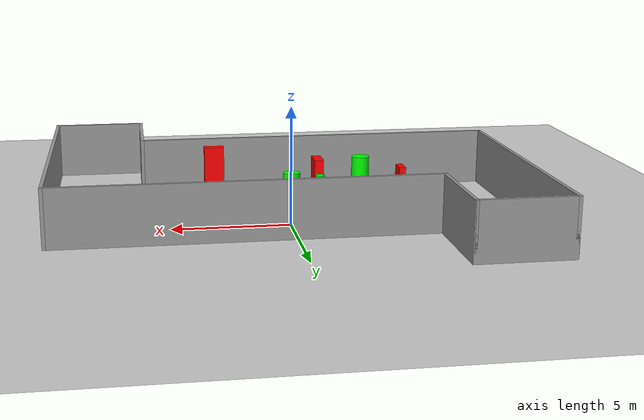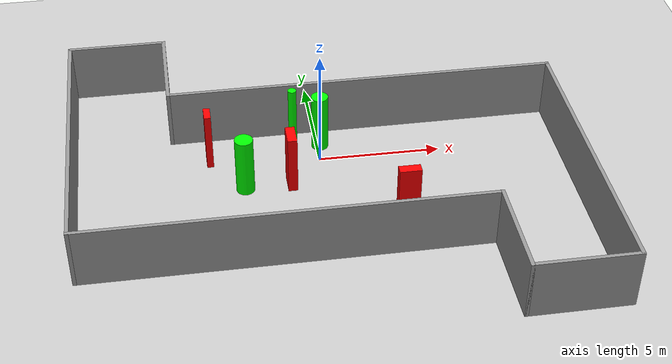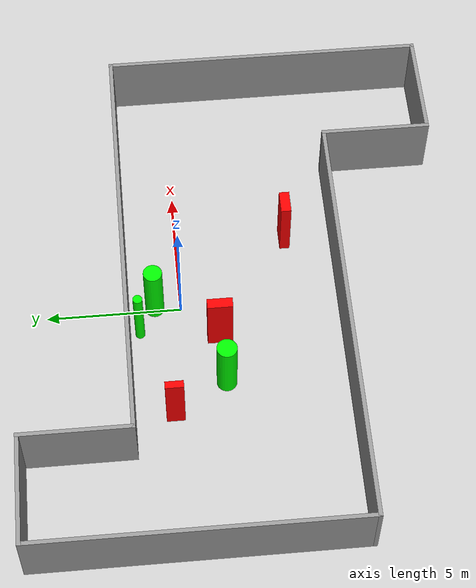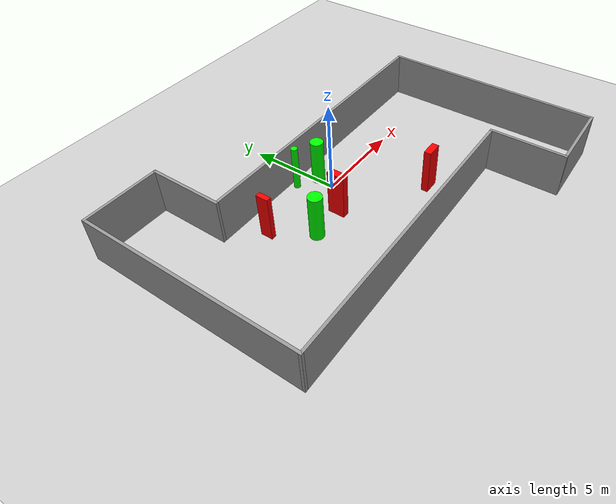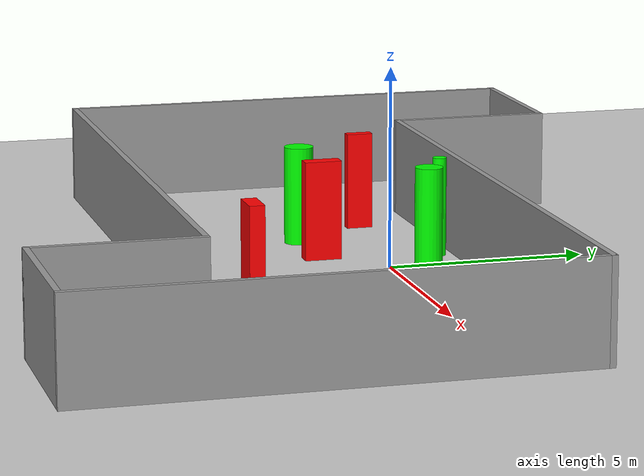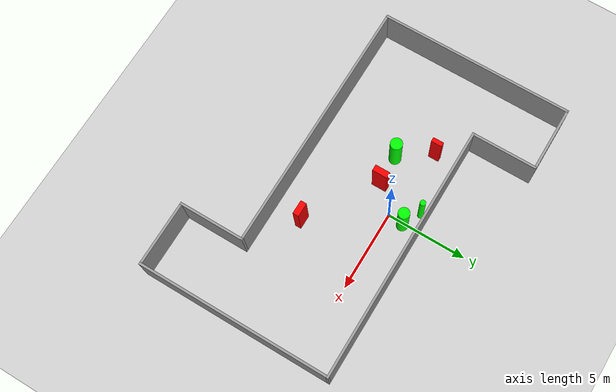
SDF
<sdf version="1.7">
 <world name="default">
  <light name="sun" type="directional">
   <pose>0 0 10 0 -0 0</pose>
   <diffuse>0.8 0.8 0.8 1</diffuse>
   <specular>0.2 0.2 0.2 1</specular>
   <attenuation>
    <range>1000</range>
    <constant>0.9</constant>
    <linear>0.01</linear>
    <quadratic>0.001</quadratic>
   </attenuation>
   <direction>-0.5 0.1 -0.9</direction>
   <spot><inner_angle>0</inner_angle><outer_angle>0</outer_angle><falloff>0</falloff></spot>
  </light>
  <model name="ground_plane">
   <static>1</static>
   <link name="link">
    <collision name="collision">
     <geometry><plane><normal>0 0 1</normal><size>100 100</size></plane></geometry>
     <surface>
      <contact><collide_bitmask>65535</collide_bitmask></contact>
      <friction><ode><mu>100</mu><mu2>50</mu2></ode></friction>
     </surface>
    </collision>
    <visual name="visual">
     <cast_shadows>0</cast_shadows>
     <geometry><plane><normal>0 0 1</normal><size>100 100</size></plane></geometry>
     <material>
      <script><uri>file://media/materials/scripts/gazebo.material</uri><name>Gazebo/Grey</name></script>
     </material>
    </visual>
   </link>
  </model>
  <gravity>0 0 -9.8</gravity>
  <magnetic_field>6e-06 2.3e-05 -4.2e-05</magnetic_field>
  <atmosphere type="adiabatic"/>
  <physics type="ode">
   <max_step_size>0.001</max_step_size>
   <real_time_factor>1</real_time_factor>
   <real_time_update_rate>1000</real_time_update_rate>
  </physics>
  <scene><ambient>0.4 0.4 0.4 1</ambient><background>0.7 0.7 0.7 1</background><shadows>1</shadows></scene>
  <spherical_coordinates>
   <surface_model>EARTH_WGS84</surface_model>
   <latitude_deg>0</latitude_deg>
   <longitude_deg>0</longitude_deg>
   <elevation>0</elevation>
   <heading_deg>0</heading_deg>
  </spherical_coordinates>
  <model name="my_base_walls">
   <link name="Wall_13">
    <collision name="Wall_13_Collision">
     <geometry><box><size>12.15 0.15 2.5</size></box></geometry>
     <pose>0 0 1.25 0 -0 0</pose>
    </collision>
    <visual name="Wall_13_Visual">
     <pose>0 0 1.25 0 -0 0</pose>
     <geometry><box><size>12.15 0.15 2.5</size></box></geometry>
     <material>
      <script><uri>file://media/materials/scripts/gazebo.material</uri><name>Gazebo/Grey</name></script>
      <ambient>1 1 1 1</ambient>
     </material>
     <meta><layer>0</layer></meta>
    </visual>
    <pose>10 -2 0 0 -0 1.5708</pose>
   </link>
   <link name="Wall_15">
    <collision name="Wall_15_Collision">
     <geometry><box><size>16.15 0.15 2.5</size></box></geometry>
     <pose>0 0 1.25 0 -0 0</pose>
    </collision>
    <visual name="Wall_15_Visual">
     <pose>0 0 1.25 0 -0 0</pose>
     <geometry><box><size>16.15 0.15 2.5</size></box></geometry>
     <material>
      <script><uri>file://media/materials/scripts/gazebo.material</uri><name>Gazebo/Grey</name></script>
      <ambient>1 1 1 1</ambient>
     </material>
     <meta><layer>0</layer></meta>
    </visual>
    <pose>2 4 0 0 -0 3.14159</pose>
   </link>
   <link name="Wall_17">
    <collision name="Wall_17_Collision">
     <geometry><box><size>4.15 0.15 2.5</size></box></geometry>
     <pose>0 0 1.25 0 -0 0</pose>
    </collision>
    <visual name="Wall_17_Visual">
     <pose>0 0 1.25 0 -0 0</pose>
     <geometry><box><size>4.15 0.15 2.5</size></box></geometry>
     <material>
      <script><uri>file://media/materials/scripts/gazebo.material</uri><name>Gazebo/Grey</name></script>
      <ambient>1 1 1 1</ambient>
     </material>
     <meta><layer>0</layer></meta>
    </visual>
    <pose>6 -6 0 0 -0 -1.5708</pose>
   </link>
   <link name="Wall_19">
    <collision name="Wall_19_Collision">
     <geometry><box><size>12.15 0.15 2.5</size></box></geometry>
     <pose>0 0 1.25 0 -0 0</pose>
    </collision>
    <visual name="Wall_19_Visual">
     <pose>0 0 1.25 0 -0 0</pose>
     <geometry><box><size>12.15 0.15 2.5</size></box></geometry>
     <material>
      <script><uri>file://media/materials/scripts/gazebo.material</uri><name>Gazebo/Grey</name></script>
      <ambient>1 1 1 1</ambient>
     </material>
     <meta><layer>0</layer></meta>
    </visual>
    <pose>-10 2 0 0 -0 1.5708</pose>
   </link>
   <link name="Wall_21">
    <collision name="Wall_21_Collision">
     <geometry><box><size>4.15 0.15 2.5</size></box></geometry>
     <pose>0 0 1.25 0 -0 0</pose>
    </collision>
    <visual name="Wall_21_Visual">
     <pose>0 0 1.25 0 -0 0</pose>
     <geometry><box><size>4.15 0.15 2.5</size></box></geometry>
     <material>
      <script><uri>file://media/materials/scripts/gazebo.material</uri><name>Gazebo/Grey</name></script>
      <ambient>1 1 1 1</ambient>
     </material>
     <meta><layer>0</layer></meta>
    </visual>
    <pose>-8 8 0 0 -0 0</pose>
   </link>
   <link name="Wall_23">
    <collision name="Wall_23_Collision">
     <geometry><box><size>4.15 0.15 2.5</size></box></geometry>
     <pose>0 0 1.25 0 -0 0</pose>
    </collision>
    <visual name="Wall_23_Visual">
     <pose>0 0 1.25 0 -0 0</pose>
     <geometry><box><size>4.15 0.15 2.5</size></box></geometry>
     <material>
      <script><uri>file://media/materials/scripts/gazebo.material</uri><name>Gazebo/Grey</name></script>
      <ambient>1 1 1 1</ambient>
     </material>
     <meta><layer>0</layer></meta>
    </visual>
    <pose>-6 6 0 0 -0 -1.5708</pose>
   </link>
   <link name="Wall_25">
    <collision name="Wall_25_Collision">
     <geometry><box><size>4.15 0.15 2.5</size></box></geometry>
     <pose>0 0 1.25 0 -0 0</pose>
    </collision>
    <visual name="Wall_25_Visual">
     <pose>0 0 1.25 0 -0 0</pose>
     <geometry><box><size>4.15 0.15 2.5</size></box></geometry>
     <material>
      <script><uri>file://media/materials/scripts/gazebo.material</uri><name>Gazebo/Grey</name></script>
      <ambient>1 1 1 1</ambient>
     </material>
     <meta><layer>0</layer></meta>
    </visual>
    <pose>8 -8 0 0 -0 0</pose>
   </link>
   <link name="Wall_9">
    <collision name="Wall_9_Collision">
     <geometry><box><size>16.15 0.15 2.5</size></box></geometry>
     <pose>0 0 1.25 0 -0 0</pose>
    </collision>
    <visual name="Wall_9_Visual">
     <pose>0 0 1.25 0 -0 0</pose>
     <geometry><box><size>16.15 0.15 2.5</size></box></geometry>
     <material>
      <script><uri>file://media/materials/scripts/gazebo.material</uri><name>Gazebo/Grey</name></script>
      <ambient>1 1 1 1</ambient>
     </material>
     <meta><layer>0</layer></meta>
    </visual>
    <pose>-2 -4 0 0 -0 3.14159</pose>
   </link>
   <static>1</static>
   <pose>-0 -2 0 0 -0 0</pose>
  </model>
  <model name="cylinder1">
   <static>1</static>
   <link name="link">
    <inertial>
     <mass>1</mass>
     <inertia><ixx>0.5</ixx><ixy>0</ixy><ixz>0</ixz><iyy>0.5</iyy><iyz>0</iyz><izz>1</izz></inertia>
    </inertial>
    <collision name="collision">
     <geometry><cylinder><radius>0.37256095688483404</radius><length>2.5</length></cylinder></geometry>
    </collision>
    <visual name="visual">
     <geometry><cylinder><radius>0.37256095688483404</radius><length>2.5</length></cylinder></geometry>
     <material>
      <ambient>0 1 0 1</ambient>
      <diffuse>0 1 0 1</diffuse>
      <specular>0.1 0.1 0.1 1</specular>
      <emissive>0 0 0 0</emissive>
     </material>
    </visual>
   </link>
   <pose>-3.229486019040693 -1.4701244482072298 1.25 0 0 0</pose>
  </model>
  <model name="cylinder2">
   <static>1</static>
   <link name="link">
    <inertial>
     <mass>1</mass>
     <inertia><ixx>0.5</ixx><ixy>0</ixy><ixz>0</ixz><iyy>0.5</iyy><iyz>0</iyz><izz>1</izz></inertia>
    </inertial>
    <collision name="collision">
     <geometry><cylinder><radius>0.17501014186652522</radius><length>2.5</length></cylinder></geometry>
    </collision>
    <visual name="visual">
     <geometry><cylinder><radius>0.17501014186652522</radius><length>2.5</length></cylinder></geometry>
     <material>
      <ambient>0 1 0 1</ambient>
      <diffuse>0 1 0 1</diffuse>
      <specular>0.1 0.1 0.1 1</specular>
      <emissive>0 0 0 0</emissive>
     </material>
    </visual>
   </link>
   <pose>-0.9368734179433673 1.5678382806027518 1.25 0 0 0</pose>
  </model>
  <model name="cylinder3">
   <static>1</static>
   <link name="link">
    <inertial>
     <mass>1</mass>
     <inertia><ixx>0.5</ixx><ixy>0</ixy><ixz>0</ixz><iyy>0.5</iyy><iyz>0</iyz><izz>1</izz></inertia>
    </inertial>
    <collision name="collision">
     <geometry><cylinder><radius>0.3483385375212227</radius><length>2.5</length></cylinder></geometry>
    </collision>
    <visual name="visual">
     <geometry><cylinder><radius>0.3483385375212227</radius><length>2.5</length></cylinder></geometry>
     <material>
      <ambient>0 1 0 1</ambient>
      <diffuse>0 1 0 1</diffuse>
      <specular>0.1 0.1 0.1 1</specular>
      <emissive>0 0 0 0</emissive>
     </material>
    </visual>
   </link>
   <pose>0.12651140296665453 0.9598401582417413 1.25 0 0 0</pose>
  </model>
  <model name="box1">
   <static>1</static>
   <link name="link">
    <inertial>
     <mass>1</mass>
     <inertia><ixx>0.083</ixx><ixy>0</ixy><ixz>0</ixz><iyy>0.083</iyy><iyz>0</iyz><izz>0.083</izz></inertia>
    </inertial>
    <collision name="collision">
     <geometry><box><size>0.8642672111205834 0.37671231896511126 2.5</size></box></geometry>
    </collision>
    <visual name="visual">
     <geometry><box><size>0.8642672111205834 0.37671231896511126 2.5</size></box></geometry>
     <material>
      <ambient>1 0 0 1</ambient>
      <diffuse>1 0 0 1</diffuse>
      <specular>0.1 0.1 0.1 1</specular>
      <emissive>0 0 0 0</emissive>
     </material>
    </visual>
    <sensor name="my_contact" type="contact">
     <contact><collision>box_collision</collision><topic>__default_topic__</topic></contact>
    </sensor>
   </link>
   <pose>2.8637238087339814 -4.177319875696041 1.25 0 0 0</pose>
  </model>
  <model name="box2">
   <static>1</static>
   <link name="link">
    <inertial>
     <mass>1</mass>
     <inertia><ixx>0.083</ixx><ixy>0</ixy><ixz>0</ixz><iyy>0.083</iyy><iyz>0</iyz><izz>0.083</izz></inertia>
    </inertial>
    <collision name="collision">
     <geometry><box><size>0.3827945329784108 0.9326865270677549 2.5</size></box></geometry>
    </collision>
    <visual name="visual">
     <geometry><box><size>0.3827945329784108 0.9326865270677549 2.5</size></box></geometry>
     <material>
      <ambient>1 0 0 1</ambient>
      <diffuse>1 0 0 1</diffuse>
      <specular>0.1 0.1 0.1 1</specular>
      <emissive>0 0 0 0</emissive>
     </material>
    </visual>
    <sensor name="my_contact" type="contact">
     <contact><collision>box_collision</collision><topic>__default_topic__</topic></contact>
    </sensor>
   </link>
   <pose>-1.3469952193079777 -1.3747581597213605 1.25 0 0 0</pose>
  </model>
  <model name="box3">
   <static>1</static>
   <link name="link">
    <inertial>
     <mass>1</mass>
     <inertia><ixx>0.083</ixx><ixy>0</ixy><ixz>0</ixz><iyy>0.083</iyy><iyz>0</iyz><izz>0.083</izz></inertia>
    </inertial>
    <collision name="collision">
     <geometry><box><size>0.2718013933254426 0.6741677981313818 2.5</size></box></geometry>
    </collision>
    <visual name="visual">
     <geometry><box><size>0.2718013933254426 0.6741677981313818 2.5</size></box></geometry>
     <material>
      <ambient>1 0 0 1</ambient>
      <diffuse>1 0 0 1</diffuse>
      <specular>0.1 0.1 0.1 1</specular>
      <emissive>0 0 0 0</emissive>
     </material>
    </visual>
    <sensor name="my_contact" type="contact">
     <contact><collision>box_collision</collision><topic>__default_topic__</topic></contact>
    </sensor>
   </link>
   <pose>-4.521508940345212 0.4868676615249363 1.25 0 0 0</pose>
  </model>
 </world>
</sdf>
